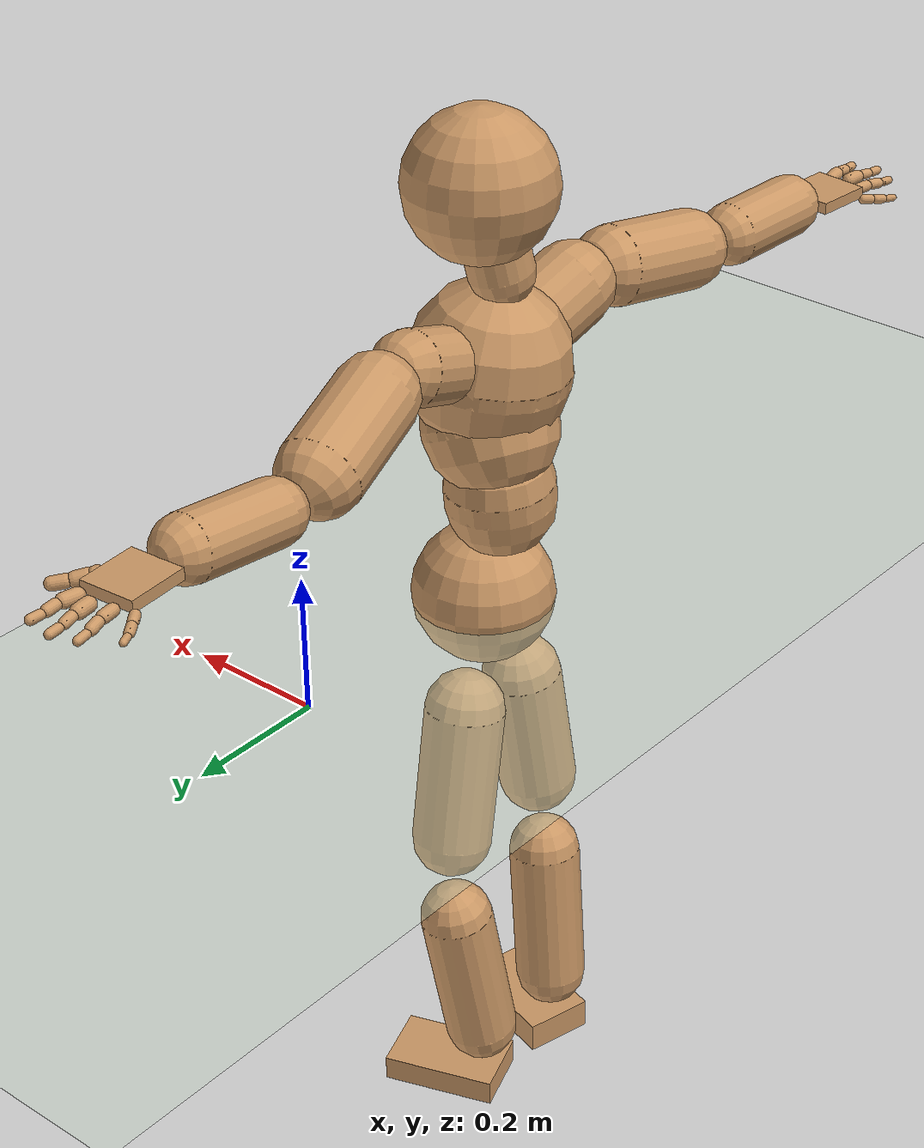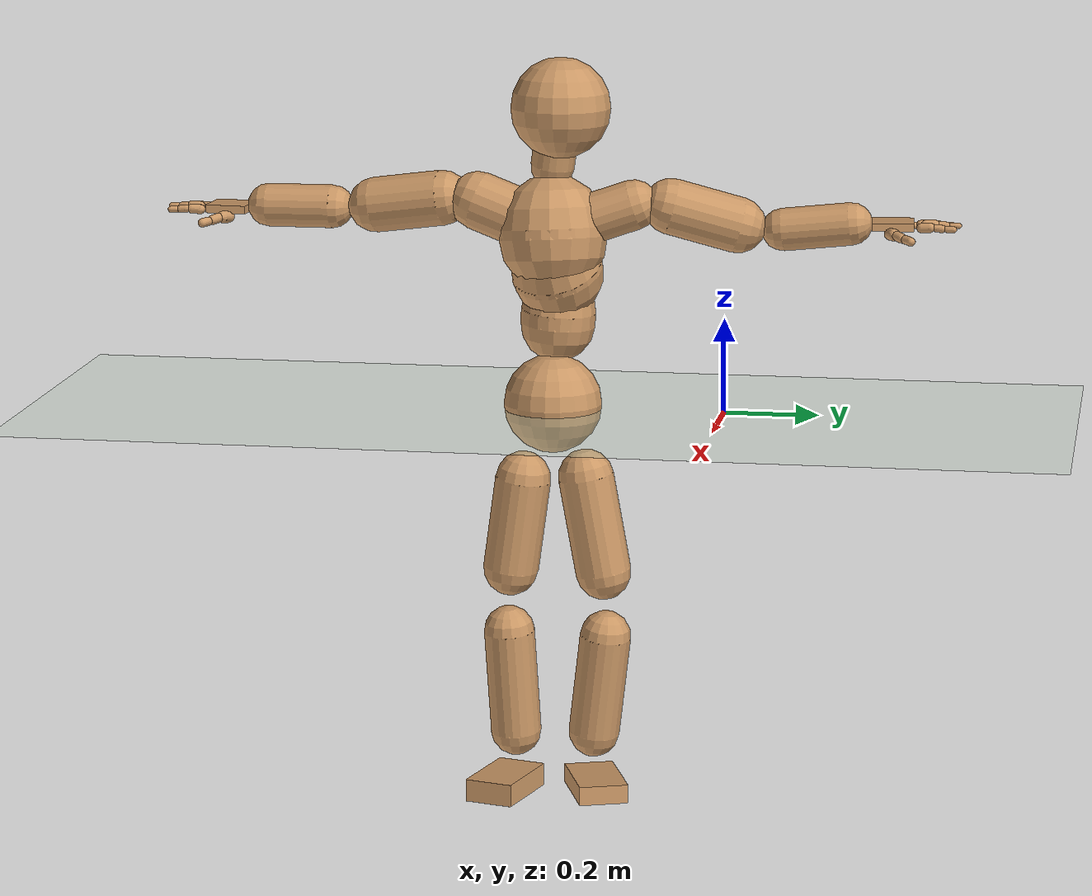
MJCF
<mujoco model="humanoid">
  <compiler coordinate="local" angle="radian"/>
  <default>
    <joint damping="0.0" armature="0.01" stiffness="0.0" limited="true"/>
    <geom conaffinity="1" condim="3" contype="7" margin="0.001" rgba="0.8 0.6 .4 1"/>
  </default>
  <asset>
    <texture type="skybox" builtin="gradient" rgb1=".4 .5 .6" rgb2="0 0 0" width="100" height="100"/>
    <texture builtin="flat" height="1278" mark="cross" markrgb="1 1 1" name="texgeom" random="0.01" rgb1="0.8 0.6 0.4" rgb2="0.8 0.6 0.4" type="cube" width="127"/>
    <texture builtin="checker" height="100" name="texplane" rgb1="0 0 0" rgb2="0.8 0.8 0.8" type="2d" width="100"/>
    <material name="MatPlane" reflectance="0.5" shininess="1" specular="1" texrepeat="60 60" texture="texplane"/>
    <material name="geom" texture="texgeom" texuniform="true"/>
  </asset>
  <worldbody>
    <light cutoff="100" diffuse="1 1 1" dir="-0 0 -1.3" directional="true" exponent="1" pos="0 0 1.3" specular=".1 .1 .1"/>
    <geom conaffinity="1" condim="3" name="floor" pos="0 0 0" rgba="0.8 0.9 0.8 1" size="100 100 .2" type="plane" material="MatPlane"/>
    <body name="Pelvis" pos="0.0014 -0.3631 0.009">
      <freejoint name="Pelvis"/>
      <geom type="sphere" contype="1" conaffinity="1" density="500" size="0.1045" pos="0.0000 0.0000 0.0000" name="Pelvis"/>
      <body name="L_Hip" pos="-0.0193 0.0553 -0.0921">
        <joint name="L_Hip_x" type="hinge" pos="0 0 0" axis="1 0 0" stiffness="800" damping="80" armature="0.02" range="-180.0000 180.0000"/>
        <joint name="L_Hip_y" type="hinge" pos="0 0 0" axis="0 1 0" stiffness="800" damping="80" armature="0.02" range="-180.0000 180.0000"/>
        <joint name="L_Hip_z" type="hinge" pos="0 0 0" axis="0 0 1" stiffness="800" damping="80" armature="0.02" range="-180.0000 180.0000"/>
        <geom type="capsule" contype="1" conaffinity="1" density="500" fromto="-0.0010 0.0125 -0.0695 -0.0041 0.0501 -0.2781" size="0.0592" name="L_Hip"/>
        <body name="L_Knee" pos="-0.0051 0.0627 -0.3476">
          <joint name="L_Knee_x" type="hinge" pos="0 0 0" axis="1 0 0" stiffness="800" damping="80" armature="0.02" range="-180.0000 180.0000"/>
          <joint name="L_Knee_y" type="hinge" pos="0 0 0" axis="0 1 0" stiffness="800" damping="80" armature="0.02" range="-180.0000 180.0000"/>
          <joint name="L_Knee_z" type="hinge" pos="0 0 0" axis="0 0 1" stiffness="800" damping="80" armature="0.02" range="-180.0000 180.0000"/>
          <geom type="capsule" contype="1" conaffinity="1" density="500" fromto="-0.0076 -0.0092 -0.0738 -0.0303 -0.0369 -0.2950" size="0.0547" name="L_Knee"/>
          <body name="L_Ankle" pos="-0.0378 -0.0462 -0.3688">
            <joint name="L_Ankle_x" type="hinge" pos="0 0 0" axis="1 0 0" stiffness="800" damping="80" armature="0.02" range="-180.0000 180.0000"/>
            <joint name="L_Ankle_y" type="hinge" pos="0 0 0" axis="0 1 0" stiffness="800" damping="80" armature="0.02" range="-180.0000 180.0000"/>
            <joint name="L_Ankle_z" type="hinge" pos="0 0 0" axis="0 0 1" stiffness="800" damping="80" armature="0.02" range="-180.0000 180.0000"/>
            <geom type="box" contype="1" conaffinity="1" density="500" pos="0.0629 0.0222 -0.0263" size="0.0874 0.0527 0.0202" quat="0.9856 0.0000 0.0000 0.1689" name="L_Ankle"/>
            <body name="L_Toe" pos="0.1257 0.0444 -0.0526">
              <joint name="L_Toe_x" type="hinge" pos="0 0 0" axis="1 0 0" stiffness="500" damping="50" armature="0.02" range="-180.0000 180.0000"/>
              <joint name="L_Toe_y" type="hinge" pos="0 0 0" axis="0 1 0" stiffness="500" damping="50" armature="0.02" range="-180.0000 180.0000"/>
              <joint name="L_Toe_z" type="hinge" pos="0 0 0" axis="0 0 1" stiffness="500" damping="50" armature="0.02" range="-180.0000 180.0000"/>
              <geom type="box" contype="1" conaffinity="1" density="500" pos="0.0000 0.0000 0.0278" size="0.0011 0.0025 0.0011" quat="0.9849 0.0000 0.0000 0.1733" name="L_Toe"/>
            </body>
          </body>
        </body>
      </body>
      <body name="R_Hip" pos="-0.0117 -0.0574 -0.1031">
        <joint name="R_Hip_x" type="hinge" pos="0 0 0" axis="1 0 0" stiffness="800" damping="80" armature="0.02" range="-180.0000 180.0000"/>
        <joint name="R_Hip_y" type="hinge" pos="0 0 0" axis="0 1 0" stiffness="800" damping="80" armature="0.02" range="-180.0000 180.0000"/>
        <joint name="R_Hip_z" type="hinge" pos="0 0 0" axis="0 0 1" stiffness="800" damping="80" armature="0.02" range="-180.0000 180.0000"/>
        <geom type="capsule" contype="1" conaffinity="1" density="500" fromto="-0.0027 -0.0093 -0.0664 -0.0106 -0.0374 -0.2654" size="0.0591" name="R_Hip"/>
        <body name="R_Knee" pos="-0.0133 -0.0467 -0.3318">
          <joint name="R_Knee_x" type="hinge" pos="0 0 0" axis="1 0 0" stiffness="800" damping="80" armature="0.02" range="-180.0000 180.0000"/>
          <joint name="R_Knee_y" type="hinge" pos="0 0 0" axis="0 1 0" stiffness="800" damping="80" armature="0.02" range="-180.0000 180.0000"/>
          <joint name="R_Knee_z" type="hinge" pos="0 0 0" axis="0 0 1" stiffness="800" damping="80" armature="0.02" range="-180.0000 180.0000"/>
          <geom type="capsule" contype="1" conaffinity="1" density="500" fromto="-0.0074 0.0035 -0.0760 -0.0298 0.0142 -0.3042" size="0.0546" name="R_Knee"/>
          <body name="R_Ankle" pos="-0.0372 0.0177 -0.3802">
            <joint name="R_Ankle_x" type="hinge" pos="0 0 0" axis="1 0 0" stiffness="800" damping="80" armature="0.02" range="-180.0000 180.0000"/>
            <joint name="R_Ankle_y" type="hinge" pos="0 0 0" axis="0 1 0" stiffness="800" damping="80" armature="0.02" range="-180.0000 180.0000"/>
            <joint name="R_Ankle_z" type="hinge" pos="0 0 0" axis="0 0 1" stiffness="800" damping="80" armature="0.02" range="-180.0000 180.0000"/>
            <geom type="box" contype="1" conaffinity="1" density="500" pos="0.0662 -0.0176 -0.0259" size="0.0874 0.0527 0.0241" quat="0.9916 0.0000 0.0000 -0.1297" name="R_Ankle"/>
            <body name="R_Toe" pos="0.1323 -0.0352 -0.0519">
              <joint name="R_Toe_x" type="hinge" pos="0 0 0" axis="1 0 0" stiffness="500" damping="50" armature="0.02" range="-180.0000 180.0000"/>
              <joint name="R_Toe_y" type="hinge" pos="0 0 0" axis="0 1 0" stiffness="500" damping="50" armature="0.02" range="-180.0000 180.0000"/>
              <joint name="R_Toe_z" type="hinge" pos="0 0 0" axis="0 0 1" stiffness="500" damping="50" armature="0.02" range="-180.0000 180.0000"/>
              <geom type="box" contype="1" conaffinity="1" density="500" pos="0.0000 0.0000 0.0234" size="0.001 0.0025 0.0011" quat="0.9927 0.0000 0.0000 -0.1209" name="R_Toe"/>
            </body>
          </body>
        </body>
      </body>
      <body name="Torso" pos="-0.0391 -0.0006 0.1042">
        <joint name="Torso_x" type="hinge" pos="0 0 0" axis="1 0 0" stiffness="1000" damping="100" armature="0.02" range="-180.0000 180.0000"/>
        <joint name="Torso_y" type="hinge" pos="0 0 0" axis="0 1 0" stiffness="1000" damping="100" armature="0.02" range="-180.0000 180.0000"/>
        <joint name="Torso_z" type="hinge" pos="0 0 0" axis="0 0 1" stiffness="1000" damping="100" armature="0.02" range="-180.0000 180.0000"/>
        <geom type="capsule" contype="1" conaffinity="1" density="500" fromto="0.0028 0.0072 0.0886 0.0019 0.0048 0.0590" size="0.0792" name="Torso"/>
        <body name="Spine" pos="0.0046 0.012 0.1476">
          <joint name="Spine_x" type="hinge" pos="0 0 0" axis="1 0 0" stiffness="1000" damping="100" armature="0.02" range="-180.0000 180.0000"/>
          <joint name="Spine_y" type="hinge" pos="0 0 0" axis="0 1 0" stiffness="1000" damping="100" armature="0.02" range="-180.0000 180.0000"/>
          <joint name="Spine_z" type="hinge" pos="0 0 0" axis="0 0 1" stiffness="1000" damping="100" armature="0.02" range="-180.0000 180.0000"/>
          <geom type="capsule" contype="1" conaffinity="1" density="500" fromto="0.0169 -0.0062 0.0345 0.0113 -0.0041 0.0230" size="0.0969" name="Spine"/>
          <body name="Chest" pos="0.0281 -0.0103 0.0575">
            <joint name="Chest_x" type="hinge" pos="0 0 0" axis="1 0 0" stiffness="1000" damping="100" armature="0.02" range="-180.0000 180.0000"/>
            <joint name="Chest_y" type="hinge" pos="0 0 0" axis="0 1 0" stiffness="1000" damping="100" armature="0.02" range="-180.0000 180.0000"/>
            <joint name="Chest_z" type="hinge" pos="0 0 0" axis="0 0 1" stiffness="1000" damping="100" armature="0.02" range="-180.0000 180.0000"/>
            <geom type="capsule" contype="1" conaffinity="1" density="500" fromto="-0.0082 -0.0038 0.0618 -0.0055 -0.0025 0.0412" size="0.1143" name="Chest"/>
            <body name="Neck" pos="-0.03 -0.0121 0.1607">
              <joint name="Neck_x" type="hinge" pos="0 0 0" axis="1 0 0" stiffness="500" damping="50" armature="0.02" range="-180.0000 180.0000"/>
              <joint name="Neck_y" type="hinge" pos="0 0 0" axis="0 1 0" stiffness="500" damping="50" armature="0.02" range="-180.0000 180.0000"/>
              <joint name="Neck_z" type="hinge" pos="0 0 0" axis="0 0 1" stiffness="500" damping="50" armature="0.02" range="-180.0000 180.0000"/>
              <geom type="capsule" contype="1" conaffinity="1" density="500" fromto="0.0044 0.0051 0.0312 0.0174 0.0202 0.1249" size="0.0462" name="Neck"/>
              <body name="Head" pos="0.0218 0.0253 0.1562">
                <joint name="Head_x" type="hinge" pos="0 0 0" axis="1 0 0" stiffness="500" damping="50" armature="0.02" range="-180.0000 180.0000"/>
                <joint name="Head_y" type="hinge" pos="0 0 0" axis="0 1 0" stiffness="500" damping="50" armature="0.02" range="-180.0000 180.0000"/>
                <joint name="Head_z" type="hinge" pos="0 0 0" axis="0 0 1" stiffness="500" damping="50" armature="0.02" range="-180.0000 180.0000"/>
                <geom type="sphere" contype="1" conaffinity="1" density="500" size="0.1059" pos="0.0000 0.0000 0.0000" name="Head"/>
              </body>
            </body>
            <body name="L_Thorax" pos="-0.0042 0.0453 0.0738">
              <joint name="L_Thorax_x" type="hinge" pos="0 0 0" axis="1 0 0" stiffness="500" damping="50" armature="0.02" range="-180.0000 180.0000"/>
              <joint name="L_Thorax_y" type="hinge" pos="0 0 0" axis="0 1 0" stiffness="500" damping="50" armature="0.02" range="-180.0000 180.0000"/>
              <joint name="L_Thorax_z" type="hinge" pos="0 0 0" axis="0 0 1" stiffness="500" damping="50" armature="0.02" range="-180.0000 180.0000"/>
              <geom type="capsule" contype="1" conaffinity="1" density="500" fromto="-0.0026 0.0304 0.0104 -0.0103 0.1217 0.0417" size="0.0528" name="L_Thorax"/>
              <body name="L_Shoulder" pos="-0.0129 0.1521 0.0522">
                <joint name="L_Shoulder_x" type="hinge" pos="0 0 0" axis="1 0 0" stiffness="500" damping="50" armature="0.02" range="-180.0000 180.0000"/>
                <joint name="L_Shoulder_y" type="hinge" pos="0 0 0" axis="0 1 0" stiffness="500" damping="50" armature="0.02" range="-180.0000 180.0000"/>
                <joint name="L_Shoulder_z" type="hinge" pos="0 0 0" axis="0 0 1" stiffness="500" damping="50" armature="0.02" range="-180.0000 180.0000"/>
                <geom type="capsule" contype="1" conaffinity="1" density="500" fromto="-0.0103 0.0462 -0.0138 -0.0411 0.1846 -0.0550" size="0.0589" name="L_Shoulder"/>
                <body name="L_Elbow" pos="-0.0514 0.2308 -0.0688">
                  <joint name="L_Elbow_x" type="hinge" pos="0 0 0" axis="1 0 0" stiffness="500" damping="50" armature="0.02" range="-720.0000 720.0000"/>
                  <joint name="L_Elbow_y" type="hinge" pos="0 0 0" axis="0 1 0" stiffness="500" damping="50" armature="0.02" range="-720.0000 720.0000"/>
                  <joint name="L_Elbow_z" type="hinge" pos="0 0 0" axis="0 0 1" stiffness="500" damping="50" armature="0.02" range="-720.0000 720.0000"/>
                  <geom type="capsule" contype="1" conaffinity="1" density="500" fromto="0.0005 0.0474 0.0053 0.0020 0.1896 0.0212" size="0.0452" name="L_Elbow"/>
                  <body name="L_Wrist" pos="0.0025 0.2369 0.0265">
                    <joint name="L_Wrist_x" type="hinge" pos="0 0 0" axis="1 0 0" stiffness="300" damping="30" armature="0.02" range="-180.0000 180.0000"/>
                    <joint name="L_Wrist_y" type="hinge" pos="0 0 0" axis="0 1 0" stiffness="300" damping="30" armature="0.02" range="-180.0000 180.0000"/>
                    <joint name="L_Wrist_z" type="hinge" pos="0 0 0" axis="0 0 1" stiffness="300" damping="30" armature="0.02" range="-180.0000 180.0000"/>
                    <geom type="box" contype="1" conaffinity="1" density="500" pos="-0.0031 0.0398 -0.0051" size="0.0438 0.0404 0.0084" quat="0.7339 0.0000 0.0000 -0.6792" name="L_Wrist"/>
                    <body name="L_Index1" pos="0.0216 0.0942 -0.0069">
                      <joint name="L_Index1_x" type="hinge" pos="0 0 0" axis="1 0 0" stiffness="100" damping="10" armature="0.02" range="-180.0000 180.0000"/>
                      <joint name="L_Index1_y" type="hinge" pos="0 0 0" axis="0 1 0" stiffness="100" damping="10" armature="0.02" range="-180.0000 180.0000"/>
                      <joint name="L_Index1_z" type="hinge" pos="0 0 0" axis="0 0 1" stiffness="100" damping="10" armature="0.02" range="-180.0000 180.0000"/>
                      <geom type="capsule" contype="1" conaffinity="1" density="500" fromto="0.0007 0.0063 0.0004 0.0030 0.0254 0.0016" size="0.01" name="L_Index1"/>
                      <body name="L_Index2" pos="0.0037 0.0317 0.002">
                        <joint name="L_Index2_x" type="hinge" pos="0 0 0" axis="1 0 0" stiffness="100" damping="10" armature="0.02" range="-180.0000 180.0000"/>
                        <joint name="L_Index2_y" type="hinge" pos="0 0 0" axis="0 1 0" stiffness="100" damping="10" armature="0.02" range="-180.0000 180.0000"/>
                        <joint name="L_Index2_z" type="hinge" pos="0 0 0" axis="0 0 1" stiffness="100" damping="10" armature="0.02" range="-180.0000 180.0000"/>
                        <geom type="capsule" contype="1" conaffinity="1" density="500" fromto="-0.0001 0.0045 -0.0005 -0.0003 0.0178 -0.0020" size="0.008" name="L_Index2"/>
                        <body name="L_Index3" pos="-0.0003 0.0223 -0.0025">
                          <joint name="L_Index3_x" type="hinge" pos="0 0 0" axis="1 0 0" stiffness="100" damping="10" armature="0.02" range="-180.0000 180.0000"/>
                          <joint name="L_Index3_y" type="hinge" pos="0 0 0" axis="0 1 0" stiffness="100" damping="10" armature="0.02" range="-180.0000 180.0000"/>
                          <joint name="L_Index3_z" type="hinge" pos="0 0 0" axis="0 0 1" stiffness="100" damping="10" armature="0.02" range="-180.0000 180.0000"/>
                          <geom type="capsule" contype="1" conaffinity="1" density="500" fromto="0.0003 0.0049 -0.0001 0.0013 0.0194 -0.0004" size="0.0067" name="L_Index3"/>
                        </body>
                      </body>
                    </body>
                    <body name="L_Middle1" pos="-0.004 0.102 -0.004">
                      <joint name="L_Middle1_x" type="hinge" pos="0 0 0" axis="1 0 0" stiffness="100" damping="10" armature="0.02" range="-180.0000 180.0000"/>
                      <joint name="L_Middle1_y" type="hinge" pos="0 0 0" axis="0 1 0" stiffness="100" damping="10" armature="0.02" range="-180.0000 180.0000"/>
                      <joint name="L_Middle1_z" type="hinge" pos="0 0 0" axis="0 0 1" stiffness="100" damping="10" armature="0.02" range="-180.0000 180.0000"/>
                      <geom type="capsule" contype="1" conaffinity="1" density="500" fromto="-0.0009 0.0061 0.0001 -0.0035 0.0243 0.0005" size="0.0101" name="L_Middle1"/>
                      <body name="L_Middle2" pos="-0.0044 0.0304 0.0007">
                        <joint name="L_Middle2_x" type="hinge" pos="0 0 0" axis="1 0 0" stiffness="100" damping="10" armature="0.02" range="-180.0000 180.0000"/>
                        <joint name="L_Middle2_y" type="hinge" pos="0 0 0" axis="0 1 0" stiffness="100" damping="10" armature="0.02" range="-180.0000 180.0000"/>
                        <joint name="L_Middle2_z" type="hinge" pos="0 0 0" axis="0 0 1" stiffness="100" damping="10" armature="0.02" range="-180.0000 180.0000"/>
                        <geom type="capsule" contype="1" conaffinity="1" density="500" fromto="-0.0009 0.0046 -0.0005 -0.0035 0.0184 -0.0020" size="0.0074" name="L_Middle2"/>
                        <body name="L_Middle3" pos="-0.0043 0.023 -0.0025">
                          <joint name="L_Middle3_x" type="hinge" pos="0 0 0" axis="1 0 0" stiffness="100" damping="10" armature="0.02" range="-180.0000 180.0000"/>
                          <joint name="L_Middle3_y" type="hinge" pos="0 0 0" axis="0 1 0" stiffness="100" damping="10" armature="0.02" range="-180.0000 180.0000"/>
                          <joint name="L_Middle3_z" type="hinge" pos="0 0 0" axis="0 0 1" stiffness="100" damping="10" armature="0.02" range="-180.0000 180.0000"/>
                          <geom type="capsule" contype="1" conaffinity="1" density="500" fromto="-0.0005 0.0050 -0.0001 -0.0019 0.0200 -0.0004" size="0.0064" name="L_Middle3"/>
                        </body>
                      </body>
                    </body>
                    <body name="L_Pinky1" pos="-0.0474 0.0772 -0.0135">
                      <joint name="L_Pinky1_x" type="hinge" pos="0 0 0" axis="1 0 0" stiffness="100" damping="10" armature="0.02" range="-180.0000 180.0000"/>
                      <joint name="L_Pinky1_y" type="hinge" pos="0 0 0" axis="0 1 0" stiffness="100" damping="10" armature="0.02" range="-180.0000 180.0000"/>
                      <joint name="L_Pinky1_z" type="hinge" pos="0 0 0" axis="0 0 1" stiffness="100" damping="10" armature="0.02" range="-180.0000 180.0000"/>
                      <geom type="capsule" contype="1" conaffinity="1" density="500" fromto="-0.0024 0.0033 -0.0003 -0.0096 0.0131 -0.0014" size="0.0071" name="L_Pinky1"/>
                      <body name="L_Pinky2" pos="-0.0119 0.0164 -0.0017">
                        <joint name="L_Pinky2_x" type="hinge" pos="0 0 0" axis="1 0 0" stiffness="100" damping="10" armature="0.02" range="-180.0000 180.0000"/>
                        <joint name="L_Pinky2_y" type="hinge" pos="0 0 0" axis="0 1 0" stiffness="100" damping="10" armature="0.02" range="-180.0000 180.0000"/>
                        <joint name="L_Pinky2_z" type="hinge" pos="0 0 0" axis="0 0 1" stiffness="100" damping="10" armature="0.02" range="-180.0000 180.0000"/>
                        <geom type="capsule" contype="1" conaffinity="1" density="500" fromto="-0.0022 0.0032 -0.0004 -0.0087 0.0129 -0.0016" size="0.0068" name="L_Pinky2"/>
                        <body name="L_Pinky3" pos="-0.0109 0.0161 -0.002">
                          <joint name="L_Pinky3_x" type="hinge" pos="0 0 0" axis="1 0 0" stiffness="100" damping="10" armature="0.02" range="-180.0000 180.0000"/>
                          <joint name="L_Pinky3_y" type="hinge" pos="0 0 0" axis="0 1 0" stiffness="100" damping="10" armature="0.02" range="-180.0000 180.0000"/>
                          <joint name="L_Pinky3_z" type="hinge" pos="0 0 0" axis="0 0 1" stiffness="100" damping="10" armature="0.02" range="-180.0000 180.0000"/>
                          <geom type="capsule" contype="1" conaffinity="1" density="500" fromto="-0.0018 0.0036 -0.0000 -0.0071 0.0145 -0.0000" size="0.005" name="L_Pinky3"/>
                        </body>
                      </body>
                    </body>
                    <body name="L_Ring1" pos="-0.0296 0.0903 -0.0074">
                      <joint name="L_Ring1_x" type="hinge" pos="0 0 0" axis="1 0 0" stiffness="100" damping="10" armature="0.02" range="-180.0000 180.0000"/>
                      <joint name="L_Ring1_y" type="hinge" pos="0 0 0" axis="0 1 0" stiffness="100" damping="10" armature="0.02" range="-180.0000 180.0000"/>
                      <joint name="L_Ring1_z" type="hinge" pos="0 0 0" axis="0 0 1" stiffness="100" damping="10" armature="0.02" range="-180.0000 180.0000"/>
                      <geom type="capsule" contype="1" conaffinity="1" density="500" fromto="-0.0010 0.0056 0.0001 -0.0039 0.0225 0.0004" size="0.0086" name="L_Ring1"/>
                      <body name="L_Ring2" pos="-0.0049 0.0281 0.0005">
                        <joint name="L_Ring2_x" type="hinge" pos="0 0 0" axis="1 0 0" stiffness="100" damping="10" armature="0.02" range="-180.0000 180.0000"/>
                        <joint name="L_Ring2_y" type="hinge" pos="0 0 0" axis="0 1 0" stiffness="100" damping="10" armature="0.02" range="-180.0000 180.0000"/>
                        <joint name="L_Ring2_z" type="hinge" pos="0 0 0" axis="0 0 1" stiffness="100" damping="10" armature="0.02" range="-180.0000 180.0000"/>
                        <geom type="capsule" contype="1" conaffinity="1" density="500" fromto="-0.0013 0.0046 -0.0005 -0.0052 0.0183 -0.0020" size="0.0079" name="L_Ring2"/>
                        <body name="L_Ring3" pos="-0.0066 0.0228 -0.0025">
                          <joint name="L_Ring3_x" type="hinge" pos="0 0 0" axis="1 0 0" stiffness="100" damping="10" armature="0.02" range="-180.0000 180.0000"/>
                          <joint name="L_Ring3_y" type="hinge" pos="0 0 0" axis="0 1 0" stiffness="100" damping="10" armature="0.02" range="-180.0000 180.0000"/>
                          <joint name="L_Ring3_z" type="hinge" pos="0 0 0" axis="0 0 1" stiffness="100" damping="10" armature="0.02" range="-180.0000 180.0000"/>
                          <geom type="capsule" contype="1" conaffinity="1" density="500" fromto="-0.0009 0.0050 -0.0001 -0.0036 0.0199 -0.0004" size="0.006" name="L_Ring3"/>
                        </body>
                      </body>
                    </body>
                    <body name="L_Thumb1" pos="0.0285 0.0341 -0.0196">
                      <joint name="L_Thumb1_x" type="hinge" pos="0 0 0" axis="1 0 0" stiffness="100" damping="10" armature="0.02" range="-180.0000 180.0000"/>
                      <joint name="L_Thumb1_y" type="hinge" pos="0 0 0" axis="0 1 0" stiffness="100" damping="10" armature="0.02" range="-180.0000 180.0000"/>
                      <joint name="L_Thumb1_z" type="hinge" pos="0 0 0" axis="0 0 1" stiffness="100" damping="10" armature="0.02" range="-180.0000 180.0000"/>
                      <geom type="capsule" contype="1" conaffinity="1" density="500" fromto="0.0055 0.0030 0.0005 0.0219 0.0118 0.0019" size="0.0128" name="L_Thumb1"/>
                      <body name="L_Thumb2" pos="0.0273 0.0148 0.0023">
                        <joint name="L_Thumb2_x" type="hinge" pos="0 0 0" axis="1 0 0" stiffness="100" damping="10" armature="0.02" range="-180.0000 180.0000"/>
                        <joint name="L_Thumb2_y" type="hinge" pos="0 0 0" axis="0 1 0" stiffness="100" damping="10" armature="0.02" range="-180.0000 180.0000"/>
                        <joint name="L_Thumb2_z" type="hinge" pos="0 0 0" axis="0 0 1" stiffness="100" damping="10" armature="0.02" range="-180.0000 180.0000"/>
                        <geom type="capsule" contype="1" conaffinity="1" density="500" fromto="0.0034 0.0037 -0.0010 0.0134 0.0148 -0.0041" size="0.0102" name="L_Thumb2"/>
                        <body name="L_Thumb3" pos="0.0168 0.0186 -0.0051">
                          <joint name="L_Thumb3_x" type="hinge" pos="0 0 0" axis="1 0 0" stiffness="100" damping="10" armature="0.02" range="-180.0000 180.0000"/>
                          <joint name="L_Thumb3_y" type="hinge" pos="0 0 0" axis="0 1 0" stiffness="100" damping="10" armature="0.02" range="-180.0000 180.0000"/>
                          <joint name="L_Thumb3_z" type="hinge" pos="0 0 0" axis="0 0 1" stiffness="100" damping="10" armature="0.02" range="-180.0000 180.0000"/>
                          <geom type="capsule" contype="1" conaffinity="1" density="500" fromto="0.0038 0.0041 -0.0006 0.0150 0.0164 -0.0025" size="0.0092" name="L_Thumb3"/>
                        </body>
                      </body>
                    </body>
                  </body>
                </body>
              </body>
            </body>
            <body name="R_Thorax" pos="-0.0068 -0.0521 0.0746">
              <joint name="R_Thorax_x" type="hinge" pos="0 0 0" axis="1 0 0" stiffness="500" damping="50" armature="0.02" range="-180.0000 180.0000"/>
              <joint name="R_Thorax_y" type="hinge" pos="0 0 0" axis="0 1 0" stiffness="500" damping="50" armature="0.02" range="-180.0000 180.0000"/>
              <joint name="R_Thorax_z" type="hinge" pos="0 0 0" axis="0 0 1" stiffness="500" damping="50" armature="0.02" range="-180.0000 180.0000"/>
              <geom type="capsule" contype="1" conaffinity="1" density="500" fromto="-0.0031 -0.0279 0.0101 -0.0122 -0.1118 0.0405" size="0.0622" name="R_Thorax"/>
              <body name="R_Shoulder" pos="-0.0153 -0.1397 0.0507">
                <joint name="R_Shoulder_x" type="hinge" pos="0 0 0" axis="1 0 0" stiffness="500" damping="50" armature="0.02" range="-180.0000 180.0000"/>
                <joint name="R_Shoulder_y" type="hinge" pos="0 0 0" axis="0 1 0" stiffness="500" damping="50" armature="0.02" range="-180.0000 180.0000"/>
                <joint name="R_Shoulder_z" type="hinge" pos="0 0 0" axis="0 0 1" stiffness="500" damping="50" armature="0.02" range="-180.0000 180.0000"/>
                <geom type="capsule" contype="1" conaffinity="1" density="500" fromto="-0.0067 -0.0496 -0.0073 -0.0266 -0.1984 -0.0291" size="0.0583" name="R_Shoulder"/>
                <body name="R_Elbow" pos="-0.0333 -0.248 -0.0364">
                  <joint name="R_Elbow_x" type="hinge" pos="0 0 0" axis="1 0 0" stiffness="500" damping="50" armature="0.02" range="-720.0000 720.0000"/>
                  <joint name="R_Elbow_y" type="hinge" pos="0 0 0" axis="0 1 0" stiffness="500" damping="50" armature="0.02" range="-720.0000 720.0000"/>
                  <joint name="R_Elbow_z" type="hinge" pos="0 0 0" axis="0 0 1" stiffness="500" damping="50" armature="0.02" range="-720.0000 720.0000"/>
                  <geom type="capsule" contype="1" conaffinity="1" density="500" fromto="-0.0019 -0.0462 -0.0003 -0.0078 -0.1848 -0.0012" size="0.0461" name="R_Elbow"/>
                  <body name="R_Wrist" pos="-0.0097 -0.231 -0.0014">
                    <joint name="R_Wrist_x" type="hinge" pos="0 0 0" axis="1 0 0" stiffness="300" damping="30" armature="0.02" range="-180.0000 180.0000"/>
                    <joint name="R_Wrist_y" type="hinge" pos="0 0 0" axis="0 1 0" stiffness="300" damping="30" armature="0.02" range="-180.0000 180.0000"/>
                    <joint name="R_Wrist_z" type="hinge" pos="0 0 0" axis="0 0 1" stiffness="300" damping="30" armature="0.02" range="-180.0000 180.0000"/>
                    <geom type="box" contype="1" conaffinity="1" density="500" pos="-0.0036 -0.0395 -0.0070" size="0.0438 0.0411 0.0086" quat="0.7382 0.0000 0.0000 0.6745" name="R_Wrist"/>
                    <body name="R_Index1" pos="0.0207 -0.0938 -0.0106">
                      <joint name="R_Index1_x" type="hinge" pos="0 0 0" axis="1 0 0" stiffness="100" damping="10" armature="0.02" range="-180.0000 180.0000"/>
                      <joint name="R_Index1_y" type="hinge" pos="0 0 0" axis="0 1 0" stiffness="100" damping="10" armature="0.02" range="-180.0000 180.0000"/>
                      <joint name="R_Index1_z" type="hinge" pos="0 0 0" axis="0 0 1" stiffness="100" damping="10" armature="0.02" range="-180.0000 180.0000"/>
                      <geom type="capsule" contype="1" conaffinity="1" density="500" fromto="0.0007 -0.0063 0.0004 0.0030 -0.0254 0.0016" size="0.01" name="R_Index1"/>
                      <body name="R_Index2" pos="0.0037 -0.0317 0.002">
                        <joint name="R_Index2_x" type="hinge" pos="0 0 0" axis="1 0 0" stiffness="100" damping="10" armature="0.02" range="-180.0000 180.0000"/>
                        <joint name="R_Index2_y" type="hinge" pos="0 0 0" axis="0 1 0" stiffness="100" damping="10" armature="0.02" range="-180.0000 180.0000"/>
                        <joint name="R_Index2_z" type="hinge" pos="0 0 0" axis="0 0 1" stiffness="100" damping="10" armature="0.02" range="-180.0000 180.0000"/>
                        <geom type="capsule" contype="1" conaffinity="1" density="500" fromto="-0.0001 -0.0045 -0.0005 -0.0003 -0.0178 -0.0020" size="0.008" name="R_Index2"/>
                        <body name="R_Index3" pos="-0.0003 -0.0223 -0.0025">
                          <joint name="R_Index3_x" type="hinge" pos="0 0 0" axis="1 0 0" stiffness="100" damping="10" armature="0.02" range="-180.0000 180.0000"/>
                          <joint name="R_Index3_y" type="hinge" pos="0 0 0" axis="0 1 0" stiffness="100" damping="10" armature="0.02" range="-180.0000 180.0000"/>
                          <joint name="R_Index3_z" type="hinge" pos="0 0 0" axis="0 0 1" stiffness="100" damping="10" armature="0.02" range="-180.0000 180.0000"/>
                          <geom type="capsule" contype="1" conaffinity="1" density="500" fromto="0.0003 -0.0041 -0.0001 0.0013 -0.0162 -0.0004" size="0.007" name="R_Index3"/>
                        </body>
                      </body>
                    </body>
                    <body name="R_Middle1" pos="-0.005 -0.1015 -0.0078">
                      <joint name="R_Middle1_x" type="hinge" pos="0 0 0" axis="1 0 0" stiffness="100" damping="10" armature="0.02" range="-180.0000 180.0000"/>
                      <joint name="R_Middle1_y" type="hinge" pos="0 0 0" axis="0 1 0" stiffness="100" damping="10" armature="0.02" range="-180.0000 180.0000"/>
                      <joint name="R_Middle1_z" type="hinge" pos="0 0 0" axis="0 0 1" stiffness="100" damping="10" armature="0.02" range="-180.0000 180.0000"/>
                      <geom type="capsule" contype="1" conaffinity="1" density="500" fromto="-0.0009 -0.0061 0.0001 -0.0035 -0.0243 0.0005" size="0.0101" name="R_Middle1"/>
                      <body name="R_Middle2" pos="-0.0044 -0.0304 0.0007">
                        <joint name="R_Middle2_x" type="hinge" pos="0 0 0" axis="1 0 0" stiffness="100" damping="10" armature="0.02" range="-180.0000 180.0000"/>
                        <joint name="R_Middle2_y" type="hinge" pos="0 0 0" axis="0 1 0" stiffness="100" damping="10" armature="0.02" range="-180.0000 180.0000"/>
                        <joint name="R_Middle2_z" type="hinge" pos="0 0 0" axis="0 0 1" stiffness="100" damping="10" armature="0.02" range="-180.0000 180.0000"/>
                        <geom type="capsule" contype="1" conaffinity="1" density="500" fromto="-0.0009 -0.0046 -0.0005 -0.0035 -0.0184 -0.0020" size="0.0074" name="R_Middle2"/>
                        <body name="R_Middle3" pos="-0.0043 -0.023 -0.0025">
                          <joint name="R_Middle3_x" type="hinge" pos="0 0 0" axis="1 0 0" stiffness="100" damping="10" armature="0.02" range="-180.0000 180.0000"/>
                          <joint name="R_Middle3_y" type="hinge" pos="0 0 0" axis="0 1 0" stiffness="100" damping="10" armature="0.02" range="-180.0000 180.0000"/>
                          <joint name="R_Middle3_z" type="hinge" pos="0 0 0" axis="0 0 1" stiffness="100" damping="10" armature="0.02" range="-180.0000 180.0000"/>
                          <geom type="capsule" contype="1" conaffinity="1" density="500" fromto="-0.0005 -0.0042 -0.0001 -0.0019 -0.0168 -0.0004" size="0.0067" name="R_Middle3"/>
                        </body>
                      </body>
                    </body>
                    <body name="R_Pinky1" pos="-0.0484 -0.0767 -0.0173">
                      <joint name="R_Pinky1_x" type="hinge" pos="0 0 0" axis="1 0 0" stiffness="100" damping="10" armature="0.02" range="-180.0000 180.0000"/>
                      <joint name="R_Pinky1_y" type="hinge" pos="0 0 0" axis="0 1 0" stiffness="100" damping="10" armature="0.02" range="-180.0000 180.0000"/>
                      <joint name="R_Pinky1_z" type="hinge" pos="0 0 0" axis="0 0 1" stiffness="100" damping="10" armature="0.02" range="-180.0000 180.0000"/>
                      <geom type="capsule" contype="1" conaffinity="1" density="500" fromto="-0.0024 -0.0033 -0.0003 -0.0096 -0.0131 -0.0014" size="0.0071" name="R_Pinky1"/>
                      <body name="R_Pinky2" pos="-0.0119 -0.0164 -0.0017">
                        <joint name="R_Pinky2_x" type="hinge" pos="0 0 0" axis="1 0 0" stiffness="100" damping="10" armature="0.02" range="-180.0000 180.0000"/>
                        <joint name="R_Pinky2_y" type="hinge" pos="0 0 0" axis="0 1 0" stiffness="100" damping="10" armature="0.02" range="-180.0000 180.0000"/>
                        <joint name="R_Pinky2_z" type="hinge" pos="0 0 0" axis="0 0 1" stiffness="100" damping="10" armature="0.02" range="-180.0000 180.0000"/>
                        <geom type="capsule" contype="1" conaffinity="1" density="500" fromto="-0.0022 -0.0032 -0.0004 -0.0087 -0.0129 -0.0016" size="0.0068" name="R_Pinky2"/>
                        <body name="R_Pinky3" pos="-0.0109 -0.0161 -0.002">
                          <joint name="R_Pinky3_x" type="hinge" pos="0 0 0" axis="1 0 0" stiffness="100" damping="10" armature="0.02" range="-180.0000 180.0000"/>
                          <joint name="R_Pinky3_y" type="hinge" pos="0 0 0" axis="0 1 0" stiffness="100" damping="10" armature="0.02" range="-180.0000 180.0000"/>
                          <joint name="R_Pinky3_z" type="hinge" pos="0 0 0" axis="0 0 1" stiffness="100" damping="10" armature="0.02" range="-180.0000 180.0000"/>
                          <geom type="capsule" contype="1" conaffinity="1" density="500" fromto="-0.0018 -0.0028 -0.0000 -0.0071 -0.0113 -0.0000" size="0.0053" name="R_Pinky3"/>
                        </body>
                      </body>
                    </body>
                    <body name="R_Ring1" pos="-0.0306 -0.0898 -0.0112">
                      <joint name="R_Ring1_x" type="hinge" pos="0 0 0" axis="1 0 0" stiffness="100" damping="10" armature="0.02" range="-180.0000 180.0000"/>
                      <joint name="R_Ring1_y" type="hinge" pos="0 0 0" axis="0 1 0" stiffness="100" damping="10" armature="0.02" range="-180.0000 180.0000"/>
                      <joint name="R_Ring1_z" type="hinge" pos="0 0 0" axis="0 0 1" stiffness="100" damping="10" armature="0.02" range="-180.0000 180.0000"/>
                      <geom type="capsule" contype="1" conaffinity="1" density="500" fromto="-0.0010 -0.0056 0.0001 -0.0039 -0.0225 0.0004" size="0.0086" name="R_Ring1"/>
                      <body name="R_Ring2" pos="-0.0049 -0.0281 0.0005">
                        <joint name="R_Ring2_x" type="hinge" pos="0 0 0" axis="1 0 0" stiffness="100" damping="10" armature="0.02" range="-180.0000 180.0000"/>
                        <joint name="R_Ring2_y" type="hinge" pos="0 0 0" axis="0 1 0" stiffness="100" damping="10" armature="0.02" range="-180.0000 180.0000"/>
                        <joint name="R_Ring2_z" type="hinge" pos="0 0 0" axis="0 0 1" stiffness="100" damping="10" armature="0.02" range="-180.0000 180.0000"/>
                        <geom type="capsule" contype="1" conaffinity="1" density="500" fromto="-0.0013 -0.0046 -0.0005 -0.0052 -0.0183 -0.0020" size="0.0079" name="R_Ring2"/>
                        <body name="R_Ring3" pos="-0.0066 -0.0228 -0.0025">
                          <joint name="R_Ring3_x" type="hinge" pos="0 0 0" axis="1 0 0" stiffness="100" damping="10" armature="0.02" range="-180.0000 180.0000"/>
                          <joint name="R_Ring3_y" type="hinge" pos="0 0 0" axis="0 1 0" stiffness="100" damping="10" armature="0.02" range="-180.0000 180.0000"/>
                          <joint name="R_Ring3_z" type="hinge" pos="0 0 0" axis="0 0 1" stiffness="100" damping="10" armature="0.02" range="-180.0000 180.0000"/>
                          <geom type="capsule" contype="1" conaffinity="1" density="500" fromto="-0.0009 -0.0042 -0.0001 -0.0036 -0.0167 -0.0004" size="0.0063" name="R_Ring3"/>
                        </body>
                      </body>
                    </body>
                    <body name="R_Thumb1" pos="0.0275 -0.0336 -0.0233">
                      <joint name="R_Thumb1_x" type="hinge" pos="0 0 0" axis="1 0 0" stiffness="100" damping="10" armature="0.02" range="-180.0000 180.0000"/>
                      <joint name="R_Thumb1_y" type="hinge" pos="0 0 0" axis="0 1 0" stiffness="100" damping="10" armature="0.02" range="-180.0000 180.0000"/>
                      <joint name="R_Thumb1_z" type="hinge" pos="0 0 0" axis="0 0 1" stiffness="100" damping="10" armature="0.02" range="-180.0000 180.0000"/>
                      <geom type="capsule" contype="1" conaffinity="1" density="500" fromto="0.0055 -0.0030 0.0005 0.0219 -0.0118 0.0019" size="0.0128" name="R_Thumb1"/>
                      <body name="R_Thumb2" pos="0.0273 -0.0148 0.0023">
                        <joint name="R_Thumb2_x" type="hinge" pos="0 0 0" axis="1 0 0" stiffness="100" damping="10" armature="0.02" range="-180.0000 180.0000"/>
                        <joint name="R_Thumb2_y" type="hinge" pos="0 0 0" axis="0 1 0" stiffness="100" damping="10" armature="0.02" range="-180.0000 180.0000"/>
                        <joint name="R_Thumb2_z" type="hinge" pos="0 0 0" axis="0 0 1" stiffness="100" damping="10" armature="0.02" range="-180.0000 180.0000"/>
                        <geom type="capsule" contype="1" conaffinity="1" density="500" fromto="0.0034 -0.0037 -0.0010 0.0134 -0.0148 -0.0041" size="0.0102" name="R_Thumb2"/>
                        <body name="R_Thumb3" pos="0.0168 -0.0186 -0.0051">
                          <joint name="R_Thumb3_x" type="hinge" pos="0 0 0" axis="1 0 0" stiffness="100" damping="10" armature="0.02" range="-180.0000 180.0000"/>
                          <joint name="R_Thumb3_y" type="hinge" pos="0 0 0" axis="0 1 0" stiffness="100" damping="10" armature="0.02" range="-180.0000 180.0000"/>
                          <joint name="R_Thumb3_z" type="hinge" pos="0 0 0" axis="0 0 1" stiffness="100" damping="10" armature="0.02" range="-180.0000 180.0000"/>
                          <geom type="capsule" contype="1" conaffinity="1" density="500" fromto="0.0038 -0.0033 -0.0006 0.0150 -0.0132 -0.0025" size="0.0095" name="R_Thumb3"/>
                        </body>
                      </body>
                    </body>
                  </body>
                </body>
              </body>
            </body>
          </body>
        </body>
      </body>
    </body>
  </worldbody>
  <actuator>
    <motor name="L_Hip_x" joint="L_Hip_x" gear="500"/>
    <motor name="L_Hip_y" joint="L_Hip_y" gear="500"/>
    <motor name="L_Hip_z" joint="L_Hip_z" gear="500"/>
    <motor name="L_Knee_x" joint="L_Knee_x" gear="500"/>
    <motor name="L_Knee_y" joint="L_Knee_y" gear="500"/>
    <motor name="L_Knee_z" joint="L_Knee_z" gear="500"/>
    <motor name="L_Ankle_x" joint="L_Ankle_x" gear="500"/>
    <motor name="L_Ankle_y" joint="L_Ankle_y" gear="500"/>
    <motor name="L_Ankle_z" joint="L_Ankle_z" gear="500"/>
    <motor name="L_Toe_x" joint="L_Toe_x" gear="500"/>
    <motor name="L_Toe_y" joint="L_Toe_y" gear="500"/>
    <motor name="L_Toe_z" joint="L_Toe_z" gear="500"/>
    <motor name="R_Hip_x" joint="R_Hip_x" gear="500"/>
    <motor name="R_Hip_y" joint="R_Hip_y" gear="500"/>
    <motor name="R_Hip_z" joint="R_Hip_z" gear="500"/>
    <motor name="R_Knee_x" joint="R_Knee_x" gear="500"/>
    <motor name="R_Knee_y" joint="R_Knee_y" gear="500"/>
    <motor name="R_Knee_z" joint="R_Knee_z" gear="500"/>
    <motor name="R_Ankle_x" joint="R_Ankle_x" gear="500"/>
    <motor name="R_Ankle_y" joint="R_Ankle_y" gear="500"/>
    <motor name="R_Ankle_z" joint="R_Ankle_z" gear="500"/>
    <motor name="R_Toe_x" joint="R_Toe_x" gear="500"/>
    <motor name="R_Toe_y" joint="R_Toe_y" gear="500"/>
    <motor name="R_Toe_z" joint="R_Toe_z" gear="500"/>
    <motor name="Torso_x" joint="Torso_x" gear="500"/>
    <motor name="Torso_y" joint="Torso_y" gear="500"/>
    <motor name="Torso_z" joint="Torso_z" gear="500"/>
    <motor name="Spine_x" joint="Spine_x" gear="500"/>
    <motor name="Spine_y" joint="Spine_y" gear="500"/>
    <motor name="Spine_z" joint="Spine_z" gear="500"/>
    <motor name="Chest_x" joint="Chest_x" gear="500"/>
    <motor name="Chest_y" joint="Chest_y" gear="500"/>
    <motor name="Chest_z" joint="Chest_z" gear="500"/>
    <motor name="Neck_x" joint="Neck_x" gear="500"/>
    <motor name="Neck_y" joint="Neck_y" gear="500"/>
    <motor name="Neck_z" joint="Neck_z" gear="500"/>
    <motor name="Head_x" joint="Head_x" gear="500"/>
    <motor name="Head_y" joint="Head_y" gear="500"/>
    <motor name="Head_z" joint="Head_z" gear="500"/>
    <motor name="L_Thorax_x" joint="L_Thorax_x" gear="500"/>
    <motor name="L_Thorax_y" joint="L_Thorax_y" gear="500"/>
    <motor name="L_Thorax_z" joint="L_Thorax_z" gear="500"/>
    <motor name="L_Shoulder_x" joint="L_Shoulder_x" gear="500"/>
    <motor name="L_Shoulder_y" joint="L_Shoulder_y" gear="500"/>
    <motor name="L_Shoulder_z" joint="L_Shoulder_z" gear="500"/>
    <motor name="L_Elbow_x" joint="L_Elbow_x" gear="500"/>
    <motor name="L_Elbow_y" joint="L_Elbow_y" gear="500"/>
    <motor name="L_Elbow_z" joint="L_Elbow_z" gear="500"/>
    <motor name="L_Wrist_x" joint="L_Wrist_x" gear="500"/>
    <motor name="L_Wrist_y" joint="L_Wrist_y" gear="500"/>
    <motor name="L_Wrist_z" joint="L_Wrist_z" gear="500"/>
    <motor name="L_Index1_x" joint="L_Index1_x" gear="500"/>
    <motor name="L_Index1_y" joint="L_Index1_y" gear="500"/>
    <motor name="L_Index1_z" joint="L_Index1_z" gear="500"/>
    <motor name="L_Index2_x" joint="L_Index2_x" gear="500"/>
    <motor name="L_Index2_y" joint="L_Index2_y" gear="500"/>
    <motor name="L_Index2_z" joint="L_Index2_z" gear="500"/>
    <motor name="L_Index3_x" joint="L_Index3_x" gear="500"/>
    <motor name="L_Index3_y" joint="L_Index3_y" gear="500"/>
    <motor name="L_Index3_z" joint="L_Index3_z" gear="500"/>
    <motor name="L_Middle1_x" joint="L_Middle1_x" gear="500"/>
    <motor name="L_Middle1_y" joint="L_Middle1_y" gear="500"/>
    <motor name="L_Middle1_z" joint="L_Middle1_z" gear="500"/>
    <motor name="L_Middle2_x" joint="L_Middle2_x" gear="500"/>
    <motor name="L_Middle2_y" joint="L_Middle2_y" gear="500"/>
    <motor name="L_Middle2_z" joint="L_Middle2_z" gear="500"/>
    <motor name="L_Middle3_x" joint="L_Middle3_x" gear="500"/>
    <motor name="L_Middle3_y" joint="L_Middle3_y" gear="500"/>
    <motor name="L_Middle3_z" joint="L_Middle3_z" gear="500"/>
    <motor name="L_Pinky1_x" joint="L_Pinky1_x" gear="500"/>
    <motor name="L_Pinky1_y" joint="L_Pinky1_y" gear="500"/>
    <motor name="L_Pinky1_z" joint="L_Pinky1_z" gear="500"/>
    <motor name="L_Pinky2_x" joint="L_Pinky2_x" gear="500"/>
    <motor name="L_Pinky2_y" joint="L_Pinky2_y" gear="500"/>
    <motor name="L_Pinky2_z" joint="L_Pinky2_z" gear="500"/>
    <motor name="L_Pinky3_x" joint="L_Pinky3_x" gear="500"/>
    <motor name="L_Pinky3_y" joint="L_Pinky3_y" gear="500"/>
    <motor name="L_Pinky3_z" joint="L_Pinky3_z" gear="500"/>
    <motor name="L_Ring1_x" joint="L_Ring1_x" gear="500"/>
    <motor name="L_Ring1_y" joint="L_Ring1_y" gear="500"/>
    <motor name="L_Ring1_z" joint="L_Ring1_z" gear="500"/>
    <motor name="L_Ring2_x" joint="L_Ring2_x" gear="500"/>
    <motor name="L_Ring2_y" joint="L_Ring2_y" gear="500"/>
    <motor name="L_Ring2_z" joint="L_Ring2_z" gear="500"/>
    <motor name="L_Ring3_x" joint="L_Ring3_x" gear="500"/>
    <motor name="L_Ring3_y" joint="L_Ring3_y" gear="500"/>
    <motor name="L_Ring3_z" joint="L_Ring3_z" gear="500"/>
    <motor name="L_Thumb1_x" joint="L_Thumb1_x" gear="500"/>
    <motor name="L_Thumb1_y" joint="L_Thumb1_y" gear="500"/>
    <motor name="L_Thumb1_z" joint="L_Thumb1_z" gear="500"/>
    <motor name="L_Thumb2_x" joint="L_Thumb2_x" gear="500"/>
    <motor name="L_Thumb2_y" joint="L_Thumb2_y" gear="500"/>
    <motor name="L_Thumb2_z" joint="L_Thumb2_z" gear="500"/>
    <motor name="L_Thumb3_x" joint="L_Thumb3_x" gear="500"/>
    <motor name="L_Thumb3_y" joint="L_Thumb3_y" gear="500"/>
    <motor name="L_Thumb3_z" joint="L_Thumb3_z" gear="500"/>
    <motor name="R_Thorax_x" joint="R_Thorax_x" gear="500"/>
    <motor name="R_Thorax_y" joint="R_Thorax_y" gear="500"/>
    <motor name="R_Thorax_z" joint="R_Thorax_z" gear="500"/>
    <motor name="R_Shoulder_x" joint="R_Shoulder_x" gear="500"/>
    <motor name="R_Shoulder_y" joint="R_Shoulder_y" gear="500"/>
    <motor name="R_Shoulder_z" joint="R_Shoulder_z" gear="500"/>
    <motor name="R_Elbow_x" joint="R_Elbow_x" gear="500"/>
    <motor name="R_Elbow_y" joint="R_Elbow_y" gear="500"/>
    <motor name="R_Elbow_z" joint="R_Elbow_z" gear="500"/>
    <motor name="R_Wrist_x" joint="R_Wrist_x" gear="500"/>
    <motor name="R_Wrist_y" joint="R_Wrist_y" gear="500"/>
    <motor name="R_Wrist_z" joint="R_Wrist_z" gear="500"/>
    <motor name="R_Index1_x" joint="R_Index1_x" gear="500"/>
    <motor name="R_Index1_y" joint="R_Index1_y" gear="500"/>
    <motor name="R_Index1_z" joint="R_Index1_z" gear="500"/>
    <motor name="R_Index2_x" joint="R_Index2_x" gear="500"/>
    <motor name="R_Index2_y" joint="R_Index2_y" gear="500"/>
    <motor name="R_Index2_z" joint="R_Index2_z" gear="500"/>
    <motor name="R_Index3_x" joint="R_Index3_x" gear="500"/>
    <motor name="R_Index3_y" joint="R_Index3_y" gear="500"/>
    <motor name="R_Index3_z" joint="R_Index3_z" gear="500"/>
    <motor name="R_Middle1_x" joint="R_Middle1_x" gear="500"/>
    <motor name="R_Middle1_y" joint="R_Middle1_y" gear="500"/>
    <motor name="R_Middle1_z" joint="R_Middle1_z" gear="500"/>
    <motor name="R_Middle2_x" joint="R_Middle2_x" gear="500"/>
    <motor name="R_Middle2_y" joint="R_Middle2_y" gear="500"/>
    <motor name="R_Middle2_z" joint="R_Middle2_z" gear="500"/>
    <motor name="R_Middle3_x" joint="R_Middle3_x" gear="500"/>
    <motor name="R_Middle3_y" joint="R_Middle3_y" gear="500"/>
    <motor name="R_Middle3_z" joint="R_Middle3_z" gear="500"/>
    <motor name="R_Pinky1_x" joint="R_Pinky1_x" gear="500"/>
    <motor name="R_Pinky1_y" joint="R_Pinky1_y" gear="500"/>
    <motor name="R_Pinky1_z" joint="R_Pinky1_z" gear="500"/>
    <motor name="R_Pinky2_x" joint="R_Pinky2_x" gear="500"/>
    <motor name="R_Pinky2_y" joint="R_Pinky2_y" gear="500"/>
    <motor name="R_Pinky2_z" joint="R_Pinky2_z" gear="500"/>
    <motor name="R_Pinky3_x" joint="R_Pinky3_x" gear="500"/>
    <motor name="R_Pinky3_y" joint="R_Pinky3_y" gear="500"/>
    <motor name="R_Pinky3_z" joint="R_Pinky3_z" gear="500"/>
    <motor name="R_Ring1_x" joint="R_Ring1_x" gear="500"/>
    <motor name="R_Ring1_y" joint="R_Ring1_y" gear="500"/>
    <motor name="R_Ring1_z" joint="R_Ring1_z" gear="500"/>
    <motor name="R_Ring2_x" joint="R_Ring2_x" gear="500"/>
    <motor name="R_Ring2_y" joint="R_Ring2_y" gear="500"/>
    <motor name="R_Ring2_z" joint="R_Ring2_z" gear="500"/>
    <motor name="R_Ring3_x" joint="R_Ring3_x" gear="500"/>
    <motor name="R_Ring3_y" joint="R_Ring3_y" gear="500"/>
    <motor name="R_Ring3_z" joint="R_Ring3_z" gear="500"/>
    <motor name="R_Thumb1_x" joint="R_Thumb1_x" gear="500"/>
    <motor name="R_Thumb1_y" joint="R_Thumb1_y" gear="500"/>
    <motor name="R_Thumb1_z" joint="R_Thumb1_z" gear="500"/>
    <motor name="R_Thumb2_x" joint="R_Thumb2_x" gear="500"/>
    <motor name="R_Thumb2_y" joint="R_Thumb2_y" gear="500"/>
    <motor name="R_Thumb2_z" joint="R_Thumb2_z" gear="500"/>
    <motor name="R_Thumb3_x" joint="R_Thumb3_x" gear="500"/>
    <motor name="R_Thumb3_y" joint="R_Thumb3_y" gear="500"/>
    <motor name="R_Thumb3_z" joint="R_Thumb3_z" gear="500"/>
  </actuator>
  <contact>
    <exclude body1="Torso" body2="Chest"/>
    <exclude body1="Head" body2="Chest"/>
    <exclude body1="R_Knee" body2="R_Toe"/>
    <exclude body1="R_Knee" body2="L_Ankle"/>
    <exclude body1="R_Knee" body2="L_Toe"/>
    <exclude body1="L_Knee" body2="L_Toe"/>
    <exclude body1="L_Knee" body2="R_Ankle"/>
    <exclude body1="L_Knee" body2="R_Toe"/>
    <exclude body1="L_Shoulder" body2="Chest"/>
    <exclude body1="R_Shoulder" body2="Chest"/>
  </contact>
  <sensor/>
  <size njmax="700" nconmax="700"/>
</mujoco>
